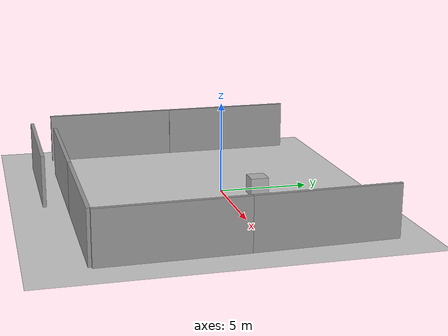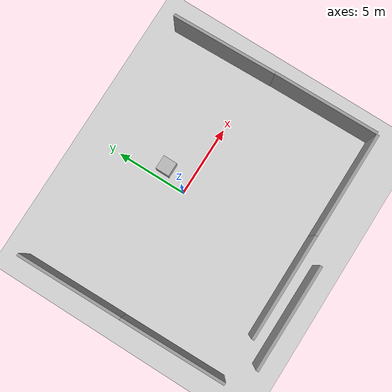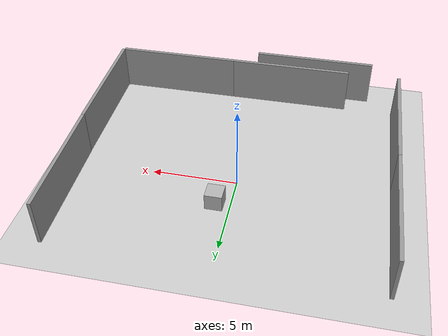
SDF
<sdf version="1.9">
 <world name="empty">
  <physics name="1ms" type="ignored">
   <max_step_size>0.001</max_step_size>
   <real_time_factor>1</real_time_factor>
   <real_time_update_rate>1000</real_time_update_rate>
  </physics>
  <plugin name="gz::sim::systems::Physics" filename="ignition-gazebo-physics-system"/>
  <plugin name="gz::sim::systems::UserCommands" filename="ignition-gazebo-user-commands-system"/>
  <plugin name="gz::sim::systems::SceneBroadcaster" filename="ignition-gazebo-scene-broadcaster-system"/>
  <plugin name="gz::sim::systems::Contact" filename="ignition-gazebo-contact-system"/>
  <plugin name="gz::sim::systems::Sensors" filename="ignition-gazebo-sensors-system">
   <render_engine>ogre2</render_engine>
  </plugin>
  <gravity>0 0 -9.8</gravity>
  <magnetic_field>6e-06 2.3e-05 -4.2e-05</magnetic_field>
  <atmosphere type="adiabatic"/>
  <scene><ambient>0.4 0.4 0.4 1</ambient><background>0.7 0.7 0.7 1</background><shadows>true</shadows></scene>
  <model name="grey_wall">
   <static>true</static>
   <link name="link">
    <pose>0 0 1.4 0 -0 0</pose>
    <collision name="collision"><geometry><box><size>7.5 0.2 2.8</size></box></geometry></collision>
    <visual name="visual">
     <cast_shadows>false</cast_shadows>
     <geometry><box><size>7.5 0.2 2.8</size></box></geometry>
     <material>
      <script>
       <uri>https://fuel.gazebosim.org/1.0/openrobotics/models/grey wall/3/files/materials/scripts</uri>
       <uri>https://fuel.gazebosim.org/1.0/openrobotics/models/grey wall/3/files/materials/textures</uri>
       <name>vrc/grey_wall</name>
      </script>
     </material>
    </visual>
    <inertial>
     <mass>1</mass>
     <inertia><ixx>1</ixx><ixy>0</ixy><ixz>0</ixz><iyy>1</iyy><iyz>0</iyz><izz>1</izz></inertia>
    </inertial>
   </link>
   <pose>9.31528 2.71628 0 0 0 -1.54526</pose>
  </model>
  <model name="grey_wall_0">
   <static>true</static>
   <link name="link">
    <pose>0 0 1.4 0 -0 0</pose>
    <collision name="collision"><geometry><box><size>7.5 0.2 2.8</size></box></geometry></collision>
    <visual name="visual">
     <cast_shadows>false</cast_shadows>
     <geometry><box><size>7.5 0.2 2.8</size></box></geometry>
     <material>
      <script>
       <uri>https://fuel.gazebosim.org/1.0/openrobotics/models/grey wall/3/files/materials/scripts</uri>
       <uri>https://fuel.gazebosim.org/1.0/openrobotics/models/grey wall/3/files/materials/textures</uri>
       <name>vrc/grey_wall</name>
      </script>
     </material>
    </visual>
    <inertial>
     <mass>1</mass>
     <inertia><ixx>1</ixx><ixy>0</ixy><ixz>0</ixz><iyy>1</iyy><iyz>0</iyz><izz>1</izz></inertia>
    </inertial>
   </link>
   <pose>9.47504 -4.7719 0 0 -0 1.58398</pose>
  </model>
  <model name="grey_wall_1">
   <static>true</static>
   <link name="link">
    <pose>0 0 1.4 0 -0 0</pose>
    <collision name="collision"><geometry><box><size>7.5 0.2 2.8</size></box></geometry></collision>
    <visual name="visual">
     <cast_shadows>false</cast_shadows>
     <geometry><box><size>7.5 0.2 2.8</size></box></geometry>
     <material>
      <script>
       <uri>https://fuel.gazebosim.org/1.0/openrobotics/models/grey wall/3/files/materials/scripts</uri>
       <uri>https://fuel.gazebosim.org/1.0/openrobotics/models/grey wall/3/files/materials/textures</uri>
       <name>vrc/grey_wall</name>
      </script>
     </material>
    </visual>
    <inertial>
     <mass>1</mass>
     <inertia><ixx>1</ixx><ixy>0</ixy><ixz>0</ixz><iyy>1</iyy><iyz>0</iyz><izz>1</izz></inertia>
    </inertial>
   </link>
   <pose>5.70575 -8.59642 0 0 -0 0</pose>
  </model>
  <model name="grey_wall_2">
   <static>true</static>
   <link name="link">
    <pose>0 0 1.4 0 -0 0</pose>
    <collision name="collision"><geometry><box><size>7.5 0.2 2.8</size></box></geometry></collision>
    <visual name="visual">
     <cast_shadows>false</cast_shadows>
     <geometry><box><size>7.5 0.2 2.8</size></box></geometry>
     <material>
      <script>
       <uri>https://fuel.gazebosim.org/1.0/openrobotics/models/grey wall/3/files/materials/scripts</uri>
       <uri>https://fuel.gazebosim.org/1.0/openrobotics/models/grey wall/3/files/materials/textures</uri>
       <name>vrc/grey_wall</name>
      </script>
     </material>
    </visual>
    <inertial>
     <mass>1</mass>
     <inertia><ixx>1</ixx><ixy>0</ixy><ixz>0</ixz><iyy>1</iyy><iyz>0</iyz><izz>1</izz></inertia>
    </inertial>
   </link>
   <pose>-1.7802 -8.59352 0 0 -0 0</pose>
  </model>
  <model name="ground_plane_1">
   <static>true</static>
   <link name="link">
    <collision name="collision">
     <geometry><plane><normal>0 0 1</normal><size>100 100</size></plane></geometry>
    </collision>
    <visual name="visual">
     <geometry><plane><normal>0 0 1</normal><size>100 100</size></plane></geometry>
     <material>
      <ambient>0.8 0.8 0.8 1</ambient>
      <diffuse>0.8 0.8 0.8 1</diffuse>
      <specular>0.8 0.8 0.8 1</specular>
     </material>
    </visual>
    <inertial>
     <mass>1</mass>
     <inertia><ixx>1</ixx><ixy>0</ixy><ixz>0</ixz><iyy>1</iyy><iyz>0</iyz><izz>1</izz></inertia>
    </inertial>
   </link>
   <pose>11.6508 4.23559 0 0 -0 0</pose>
  </model>
  <model name="grey_wall_0_1">
   <static>true</static>
   <link name="link">
    <pose>0 0 1.4 0 -0 0</pose>
    <collision name="collision"><geometry><box><size>7.5 0.2 2.8</size></box></geometry></collision>
    <visual name="visual">
     <cast_shadows>false</cast_shadows>
     <geometry><box><size>7.5 0.2 2.8</size></box></geometry>
     <material>
      <script>
       <uri>https://fuel.gazebosim.org/1.0/openrobotics/models/grey wall/3/files/materials/scripts</uri>
       <uri>https://fuel.gazebosim.org/1.0/openrobotics/models/grey wall/3/files/materials/textures</uri>
       <name>vrc/grey_wall</name>
      </script>
     </material>
    </visual>
    <inertial>
     <mass>1</mass>
     <inertia><ixx>1</ixx><ixy>0</ixy><ixz>0</ixz><iyy>1</iyy><iyz>0</iyz><izz>1</izz></inertia>
    </inertial>
   </link>
   <pose>-8.81745 2.68894 0 0 -0 1.58398</pose>
  </model>
  <model name="grey_wall_0_1_1">
   <static>true</static>
   <link name="link">
    <pose>0 0 1.4 0 -0 0</pose>
    <collision name="collision"><geometry><box><size>7.5 0.2 2.8</size></box></geometry></collision>
    <visual name="visual">
     <cast_shadows>false</cast_shadows>
     <geometry><box><size>7.5 0.2 2.8</size></box></geometry>
     <material>
      <script>
       <uri>https://fuel.gazebosim.org/1.0/openrobotics/models/grey wall/3/files/materials/scripts</uri>
       <uri>https://fuel.gazebosim.org/1.0/openrobotics/models/grey wall/3/files/materials/textures</uri>
       <name>vrc/grey_wall</name>
      </script>
     </material>
    </visual>
    <inertial>
     <mass>1</mass>
     <inertia><ixx>1</ixx><ixy>0</ixy><ixz>0</ixz><iyy>1</iyy><iyz>0</iyz><izz>1</izz></inertia>
    </inertial>
   </link>
   <pose>-8.72377 -4.8167 0 0 -0 1.58398</pose>
  </model>
  <model name="grey_wall_0_1_2">
   <static>true</static>
   <link name="link">
    <pose>0 0 1.4 0 -0 0</pose>
    <collision name="collision"><geometry><box><size>7.5 0.2 2.8</size></box></geometry></collision>
    <visual name="visual">
     <cast_shadows>false</cast_shadows>
     <geometry><box><size>7.5 0.2 2.8</size></box></geometry>
     <material>
      <script>
       <uri>https://fuel.gazebosim.org/1.0/openrobotics/models/grey wall/3/files/materials/scripts</uri>
       <uri>https://fuel.gazebosim.org/1.0/openrobotics/models/grey wall/3/files/materials/textures</uri>
       <name>vrc/grey_wall</name>
      </script>
     </material>
    </visual>
    <inertial>
     <mass>1</mass>
     <inertia><ixx>1</ixx><ixy>0</ixy><ixz>0</ixz><iyy>1</iyy><iyz>0</iyz><izz>1</izz></inertia>
    </inertial>
   </link>
   <pose>-3.22588 -9.81436 0 0 -0 3.13787</pose>
  </model>
  <model name="box">
   <pose>0.871035 1.85882 0.5 -0 0 -0</pose>
   <link name="box_link">
    <inertial>
     <inertia><ixx>0.16666</ixx><ixy>0</ixy><ixz>0</ixz><iyy>0.16666</iyy><iyz>0</iyz><izz>0.16666</izz></inertia>
     <mass>1</mass>
    </inertial>
    <collision name="box_collision"><geometry><box><size>1 1 1</size></box></geometry></collision>
    <visual name="box_visual">
     <geometry><box><size>1 1 1</size></box></geometry>
     <material>
      <ambient>0.3 0.3 0.3 1</ambient>
      <diffuse>0.7 0.7 0.7 1</diffuse>
      <specular>1 1 1 1</specular>
     </material>
    </visual>
   </link>
   <static>false</static>
  </model>
  <light name="sun" type="directional">
   <pose>0 0 10 0 -0 0</pose>
   <intensity>1</intensity>
   <direction>-0.5 0.1 -0.9</direction>
   <diffuse>0.8 0.8 0.8 1</diffuse>
   <specular>0.2 0.2 0.2 1</specular>
   <attenuation>
    <range>1000</range>
    <linear>0.01</linear>
    <constant>0.90000000000000002</constant>
    <quadratic>0.001</quadratic>
   </attenuation>
   <spot><inner_angle>0</inner_angle><outer_angle>0</outer_angle><falloff>0</falloff></spot>
  </light>
 </world>
</sdf>
